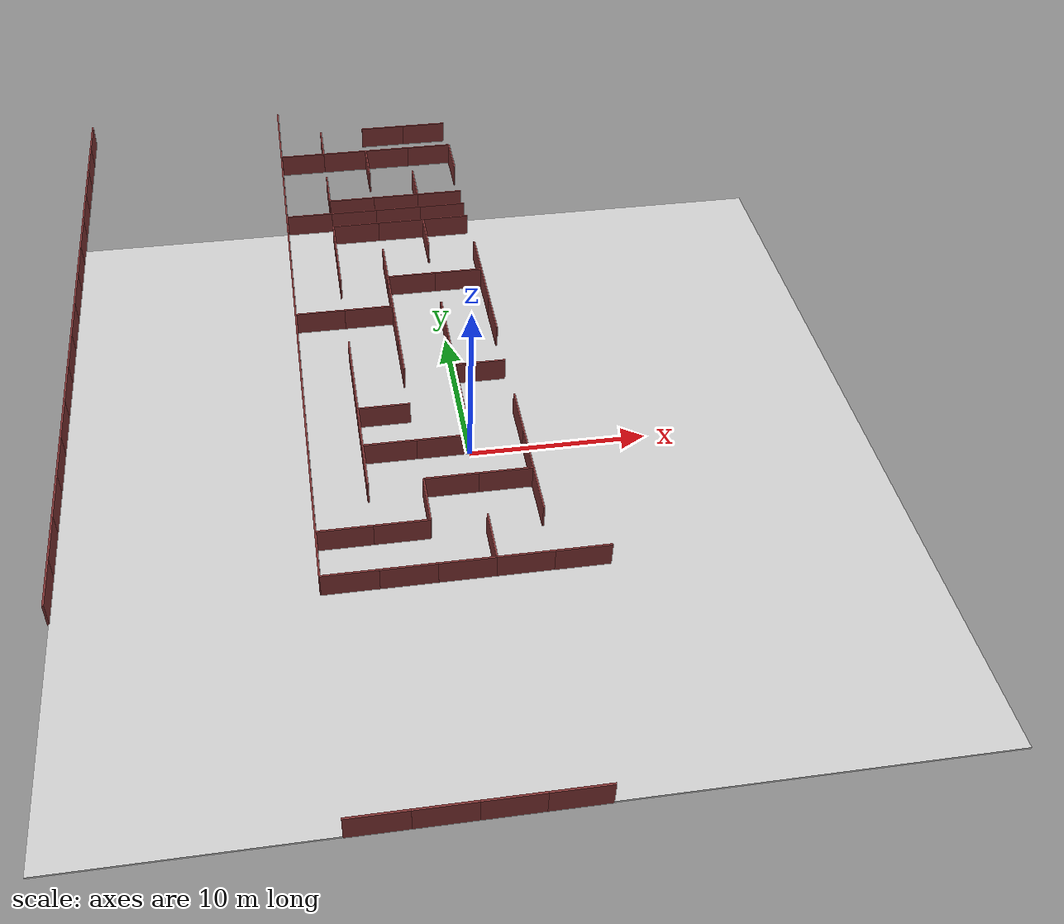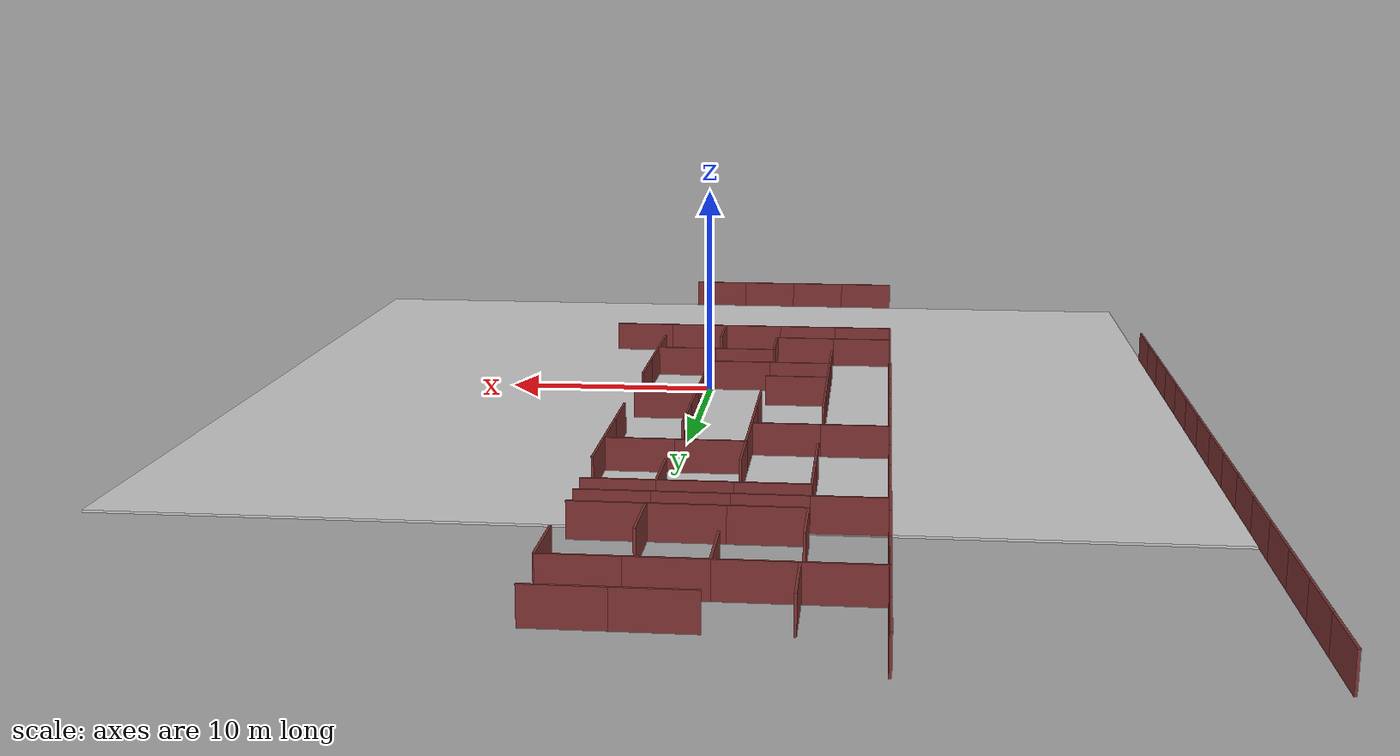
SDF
<sdf version="1.7">
 <world name="maze_world">
  <model name="ground">
   <static>true</static>
   <link name="ground_link">
    <collision name="collision"><geometry><box><size>45 45 0.1</size></box></geometry></collision>
    <visual name="visual">
     <geometry><box><size>45 45 0.1</size></box></geometry>
     <material><diffuse>0.8 0.8 0.8 1</diffuse></material>
    </visual>
   </link>
  </model>
  <model name="wall_n_1">
   <static>true</static>
   <pose>-7.5 -9.0 0.75 0 0 0</pose>
   <link name="link">
    <collision name="collision"><geometry><box><size>3 0.1 1.5</size></box></geometry></collision>
    <visual name="visual">
     <geometry><box><size>3 0.1 1.5</size></box></geometry>
     <material><diffuse>0.5 0.2 0.2 1</diffuse></material>
    </visual>
   </link>
  </model>
  <model name="wall_w_2">
   <static>true</static>
   <pose>-9.0 -7.5 0.75 0 0 1.5708</pose>
   <link name="link">
    <collision name="collision"><geometry><box><size>3 0.1 1.5</size></box></geometry></collision>
    <visual name="visual">
     <geometry><box><size>3 0.1 1.5</size></box></geometry>
     <material><diffuse>0.5 0.2 0.2 1</diffuse></material>
    </visual>
   </link>
  </model>
  <model name="wall_n_3">
   <static>true</static>
   <pose>-4.5 -9.0 0.75 0 0 0</pose>
   <link name="link">
    <collision name="collision"><geometry><box><size>3 0.1 1.5</size></box></geometry></collision>
    <visual name="visual">
     <geometry><box><size>3 0.1 1.5</size></box></geometry>
     <material><diffuse>0.5 0.2 0.2 1</diffuse></material>
    </visual>
   </link>
  </model>
  <model name="wall_n_4">
   <static>true</static>
   <pose>-1.5 -9.0 0.75 0 0 0</pose>
   <link name="link">
    <collision name="collision"><geometry><box><size>3 0.1 1.5</size></box></geometry></collision>
    <visual name="visual">
     <geometry><box><size>3 0.1 1.5</size></box></geometry>
     <material><diffuse>0.5 0.2 0.2 1</diffuse></material>
    </visual>
   </link>
  </model>
  <model name="wall_n_5">
   <static>true</static>
   <pose>1.5 -9.0 0.75 0 0 0</pose>
   <link name="link">
    <collision name="collision"><geometry><box><size>3 0.1 1.5</size></box></geometry></collision>
    <visual name="visual">
     <geometry><box><size>3 0.1 1.5</size></box></geometry>
     <material><diffuse>0.5 0.2 0.2 1</diffuse></material>
    </visual>
   </link>
  </model>
  <model name="wall_w_6">
   <static>true</static>
   <pose>0.0 -7.5 0.75 0 0 1.5708</pose>
   <link name="link">
    <collision name="collision"><geometry><box><size>3 0.1 1.5</size></box></geometry></collision>
    <visual name="visual">
     <geometry><box><size>3 0.1 1.5</size></box></geometry>
     <material><diffuse>0.5 0.2 0.2 1</diffuse></material>
    </visual>
   </link>
  </model>
  <model name="wall_n_7">
   <static>true</static>
   <pose>4.5 -9.0 0.75 0 0 0</pose>
   <link name="link">
    <collision name="collision"><geometry><box><size>3 0.1 1.5</size></box></geometry></collision>
    <visual name="visual">
     <geometry><box><size>3 0.1 1.5</size></box></geometry>
     <material><diffuse>0.5 0.2 0.2 1</diffuse></material>
    </visual>
   </link>
  </model>
  <model name="wall_n_21">
   <static>true</static>
   <pose>-7.5 -6.0 0.75 0 0 0</pose>
   <link name="link">
    <collision name="collision"><geometry><box><size>3 0.1 1.5</size></box></geometry></collision>
    <visual name="visual">
     <geometry><box><size>3 0.1 1.5</size></box></geometry>
     <material><diffuse>0.5 0.2 0.2 1</diffuse></material>
    </visual>
   </link>
  </model>
  <model name="wall_w_22">
   <static>true</static>
   <pose>-9.0 -4.5 0.75 0 0 1.5708</pose>
   <link name="link">
    <collision name="collision"><geometry><box><size>3 0.1 1.5</size></box></geometry></collision>
    <visual name="visual">
     <geometry><box><size>3 0.1 1.5</size></box></geometry>
     <material><diffuse>0.5 0.2 0.2 1</diffuse></material>
    </visual>
   </link>
  </model>
  <model name="wall_n_23">
   <static>true</static>
   <pose>-4.5 -6.0 0.75 0 0 0</pose>
   <link name="link">
    <collision name="collision"><geometry><box><size>3 0.1 1.5</size></box></geometry></collision>
    <visual name="visual">
     <geometry><box><size>3 0.1 1.5</size></box></geometry>
     <material><diffuse>0.5 0.2 0.2 1</diffuse></material>
    </visual>
   </link>
  </model>
  <model name="wall_w_24">
   <static>true</static>
   <pose>-3.0 -4.5 0.75 0 0 1.5708</pose>
   <link name="link">
    <collision name="collision"><geometry><box><size>3 0.1 1.5</size></box></geometry></collision>
    <visual name="visual">
     <geometry><box><size>3 0.1 1.5</size></box></geometry>
     <material><diffuse>0.5 0.2 0.2 1</diffuse></material>
    </visual>
   </link>
  </model>
  <model name="wall_w_26">
   <static>true</static>
   <pose>3.0 -4.5 0.75 0 0 1.5708</pose>
   <link name="link">
    <collision name="collision"><geometry><box><size>3 0.1 1.5</size></box></geometry></collision>
    <visual name="visual">
     <geometry><box><size>3 0.1 1.5</size></box></geometry>
     <material><diffuse>0.5 0.2 0.2 1</diffuse></material>
    </visual>
   </link>
  </model>
  <model name="wall_w_35">
   <static>true</static>
   <pose>-9.0 -1.5 0.75 0 0 1.5708</pose>
   <link name="link">
    <collision name="collision"><geometry><box><size>3 0.1 1.5</size></box></geometry></collision>
    <visual name="visual">
     <geometry><box><size>3 0.1 1.5</size></box></geometry>
     <material><diffuse>0.5 0.2 0.2 1</diffuse></material>
    </visual>
   </link>
  </model>
  <model name="wall_w_36">
   <static>true</static>
   <pose>-6.0 -1.5 0.75 0 0 1.5708</pose>
   <link name="link">
    <collision name="collision"><geometry><box><size>3 0.1 1.5</size></box></geometry></collision>
    <visual name="visual">
     <geometry><box><size>3 0.1 1.5</size></box></geometry>
     <material><diffuse>0.5 0.2 0.2 1</diffuse></material>
    </visual>
   </link>
  </model>
  <model name="wall_n_37">
   <static>true</static>
   <pose>-1.5 -3.0 0.75 0 0 0</pose>
   <link name="link">
    <collision name="collision"><geometry><box><size>3 0.1 1.5</size></box></geometry></collision>
    <visual name="visual">
     <geometry><box><size>3 0.1 1.5</size></box></geometry>
     <material><diffuse>0.5 0.2 0.2 1</diffuse></material>
    </visual>
   </link>
  </model>
  <model name="wall_n_38">
   <static>true</static>
   <pose>1.5 -3.0 0.75 0 0 0</pose>
   <link name="link">
    <collision name="collision"><geometry><box><size>3 0.1 1.5</size></box></geometry></collision>
    <visual name="visual">
     <geometry><box><size>3 0.1 1.5</size></box></geometry>
     <material><diffuse>0.5 0.2 0.2 1</diffuse></material>
    </visual>
   </link>
  </model>
  <model name="wall_w_39">
   <static>true</static>
   <pose>3.0 -1.5 0.75 0 0 1.5708</pose>
   <link name="link">
    <collision name="collision"><geometry><box><size>3 0.1 1.5</size></box></geometry></collision>
    <visual name="visual">
     <geometry><box><size>3 0.1 1.5</size></box></geometry>
     <material><diffuse>0.5 0.2 0.2 1</diffuse></material>
    </visual>
   </link>
  </model>
  <model name="wall_w_51">
   <static>true</static>
   <pose>-9.0 1.5 0.75 0 0 1.5708</pose>
   <link name="link">
    <collision name="collision"><geometry><box><size>3 0.1 1.5</size></box></geometry></collision>
    <visual name="visual">
     <geometry><box><size>3 0.1 1.5</size></box></geometry>
     <material><diffuse>0.5 0.2 0.2 1</diffuse></material>
    </visual>
   </link>
  </model>
  <model name="wall_n_52">
   <static>true</static>
   <pose>-4.5 0.0 0.75 0 0 0</pose>
   <link name="link">
    <collision name="collision"><geometry><box><size>3 0.1 1.5</size></box></geometry></collision>
    <visual name="visual">
     <geometry><box><size>3 0.1 1.5</size></box></geometry>
     <material><diffuse>0.5 0.2 0.2 1</diffuse></material>
    </visual>
   </link>
  </model>
  <model name="wall_w_53">
   <static>true</static>
   <pose>-6.0 1.5 0.75 0 0 1.5708</pose>
   <link name="link">
    <collision name="collision"><geometry><box><size>3 0.1 1.5</size></box></geometry></collision>
    <visual name="visual">
     <geometry><box><size>3 0.1 1.5</size></box></geometry>
     <material><diffuse>0.5 0.2 0.2 1</diffuse></material>
    </visual>
   </link>
  </model>
  <model name="wall_n_54">
   <static>true</static>
   <pose>-1.5 0.0 0.75 0 0 0</pose>
   <link name="link">
    <collision name="collision"><geometry><box><size>3 0.1 1.5</size></box></geometry></collision>
    <visual name="visual">
     <geometry><box><size>3 0.1 1.5</size></box></geometry>
     <material><diffuse>0.5 0.2 0.2 1</diffuse></material>
    </visual>
   </link>
  </model>
  <model name="wall_w_55">
   <static>true</static>
   <pose>0.0 1.5 0.75 0 0 1.5708</pose>
   <link name="link">
    <collision name="collision"><geometry><box><size>3 0.1 1.5</size></box></geometry></collision>
    <visual name="visual">
     <geometry><box><size>3 0.1 1.5</size></box></geometry>
     <material><diffuse>0.5 0.2 0.2 1</diffuse></material>
    </visual>
   </link>
  </model>
  <model name="wall_w_56">
   <static>true</static>
   <pose>3.0 1.5 0.75 0 0 1.5708</pose>
   <link name="link">
    <collision name="collision"><geometry><box><size>3 0.1 1.5</size></box></geometry></collision>
    <visual name="visual">
     <geometry><box><size>3 0.1 1.5</size></box></geometry>
     <material><diffuse>0.5 0.2 0.2 1</diffuse></material>
    </visual>
   </link>
  </model>
  <model name="wall_w_67">
   <static>true</static>
   <pose>-9.0 4.5 0.75 0 0 1.5708</pose>
   <link name="link">
    <collision name="collision"><geometry><box><size>3 0.1 1.5</size></box></geometry></collision>
    <visual name="visual">
     <geometry><box><size>3 0.1 1.5</size></box></geometry>
     <material><diffuse>0.5 0.2 0.2 1</diffuse></material>
    </visual>
   </link>
  </model>
  <model name="wall_n_68">
   <static>true</static>
   <pose>-4.5 3.0 0.75 0 0 0</pose>
   <link name="link">
    <collision name="collision"><geometry><box><size>3 0.1 1.5</size></box></geometry></collision>
    <visual name="visual">
     <geometry><box><size>3 0.1 1.5</size></box></geometry>
     <material><diffuse>0.5 0.2 0.2 1</diffuse></material>
    </visual>
   </link>
  </model>
  <model name="wall_w_69">
   <static>true</static>
   <pose>-6.0 4.5 0.75 0 0 1.5708</pose>
   <link name="link">
    <collision name="collision"><geometry><box><size>3 0.1 1.5</size></box></geometry></collision>
    <visual name="visual">
     <geometry><box><size>3 0.1 1.5</size></box></geometry>
     <material><diffuse>0.5 0.2 0.2 1</diffuse></material>
    </visual>
   </link>
  </model>
  <model name="wall_w_70">
   <static>true</static>
   <pose>0.0 4.5 0.75 0 0 1.5708</pose>
   <link name="link">
    <collision name="collision"><geometry><box><size>3 0.1 1.5</size></box></geometry></collision>
    <visual name="visual">
     <geometry><box><size>3 0.1 1.5</size></box></geometry>
     <material><diffuse>0.5 0.2 0.2 1</diffuse></material>
    </visual>
   </link>
  </model>
  <model name="wall_w_81">
   <static>true</static>
   <pose>-9.0 7.5 0.75 0 0 1.5708</pose>
   <link name="link">
    <collision name="collision"><geometry><box><size>3 0.1 1.5</size></box></geometry></collision>
    <visual name="visual">
     <geometry><box><size>3 0.1 1.5</size></box></geometry>
     <material><diffuse>0.5 0.2 0.2 1</diffuse></material>
    </visual>
   </link>
  </model>
  <model name="wall_w_82">
   <static>true</static>
   <pose>-6.0 7.5 0.75 0 0 1.5708</pose>
   <link name="link">
    <collision name="collision"><geometry><box><size>3 0.1 1.5</size></box></geometry></collision>
    <visual name="visual">
     <geometry><box><size>3 0.1 1.5</size></box></geometry>
     <material><diffuse>0.5 0.2 0.2 1</diffuse></material>
    </visual>
   </link>
  </model>
  <model name="wall_w_83">
   <static>true</static>
   <pose>-3.0 7.5 0.75 0 0 1.5708</pose>
   <link name="link">
    <collision name="collision"><geometry><box><size>3 0.1 1.5</size></box></geometry></collision>
    <visual name="visual">
     <geometry><box><size>3 0.1 1.5</size></box></geometry>
     <material><diffuse>0.5 0.2 0.2 1</diffuse></material>
    </visual>
   </link>
  </model>
  <model name="wall_n_84">
   <static>true</static>
   <pose>1.5 6.0 0.75 0 0 0</pose>
   <link name="link">
    <collision name="collision"><geometry><box><size>3 0.1 1.5</size></box></geometry></collision>
    <visual name="visual">
     <geometry><box><size>3 0.1 1.5</size></box></geometry>
     <material><diffuse>0.5 0.2 0.2 1</diffuse></material>
    </visual>
   </link>
  </model>
  <model name="wall_w_85">
   <static>true</static>
   <pose>0.0 7.5 0.75 0 0 1.5708</pose>
   <link name="link">
    <collision name="collision"><geometry><box><size>3 0.1 1.5</size></box></geometry></collision>
    <visual name="visual">
     <geometry><box><size>3 0.1 1.5</size></box></geometry>
     <material><diffuse>0.5 0.2 0.2 1</diffuse></material>
    </visual>
   </link>
  </model>
  <model name="wall_w_97">
   <static>true</static>
   <pose>-9.0 10.5 0.75 0 0 1.5708</pose>
   <link name="link">
    <collision name="collision"><geometry><box><size>3 0.1 1.5</size></box></geometry></collision>
    <visual name="visual">
     <geometry><box><size>3 0.1 1.5</size></box></geometry>
     <material><diffuse>0.5 0.2 0.2 1</diffuse></material>
    </visual>
   </link>
  </model>
  <model name="wall_w_98">
   <static>true</static>
   <pose>-3.0 10.5 0.75 0 0 1.5708</pose>
   <link name="link">
    <collision name="collision"><geometry><box><size>3 0.1 1.5</size></box></geometry></collision>
    <visual name="visual">
     <geometry><box><size>3 0.1 1.5</size></box></geometry>
     <material><diffuse>0.5 0.2 0.2 1</diffuse></material>
    </visual>
   </link>
  </model>
  <model name="wall_w_99">
   <static>true</static>
   <pose>0.0 10.5 0.75 0 0 1.5708</pose>
   <link name="link">
    <collision name="collision"><geometry><box><size>3 0.1 1.5</size></box></geometry></collision>
    <visual name="visual">
     <geometry><box><size>3 0.1 1.5</size></box></geometry>
     <material><diffuse>0.5 0.2 0.2 1</diffuse></material>
    </visual>
   </link>
  </model>
  <model name="wall_w_100">
   <static>true</static>
   <pose>3.0 10.5 0.75 0 0 1.5708</pose>
   <link name="link">
    <collision name="collision"><geometry><box><size>3 0.1 1.5</size></box></geometry></collision>
    <visual name="visual">
     <geometry><box><size>3 0.1 1.5</size></box></geometry>
     <material><diffuse>0.5 0.2 0.2 1</diffuse></material>
    </visual>
   </link>
  </model>
  <model name="wall_n_112">
   <static>true</static>
   <pose>-7.5 12.0 0.75 0 0 0</pose>
   <link name="link">
    <collision name="collision"><geometry><box><size>3 0.1 1.5</size></box></geometry></collision>
    <visual name="visual">
     <geometry><box><size>3 0.1 1.5</size></box></geometry>
     <material><diffuse>0.5 0.2 0.2 1</diffuse></material>
    </visual>
   </link>
  </model>
  <model name="wall_w_113">
   <static>true</static>
   <pose>-9.0 13.5 0.75 0 0 1.5708</pose>
   <link name="link">
    <collision name="collision"><geometry><box><size>3 0.1 1.5</size></box></geometry></collision>
    <visual name="visual">
     <geometry><box><size>3 0.1 1.5</size></box></geometry>
     <material><diffuse>0.5 0.2 0.2 1</diffuse></material>
    </visual>
   </link>
  </model>
  <model name="wall_n_114">
   <static>true</static>
   <pose>-4.5 12.0 0.75 0 0 0</pose>
   <link name="link">
    <collision name="collision"><geometry><box><size>3 0.1 1.5</size></box></geometry></collision>
    <visual name="visual">
     <geometry><box><size>3 0.1 1.5</size></box></geometry>
     <material><diffuse>0.5 0.2 0.2 1</diffuse></material>
    </visual>
   </link>
  </model>
  <model name="wall_w_115">
   <static>true</static>
   <pose>-3.0 13.5 0.75 0 0 1.5708</pose>
   <link name="link">
    <collision name="collision"><geometry><box><size>3 0.1 1.5</size></box></geometry></collision>
    <visual name="visual">
     <geometry><box><size>3 0.1 1.5</size></box></geometry>
     <material><diffuse>0.5 0.2 0.2 1</diffuse></material>
    </visual>
   </link>
  </model>
  <model name="wall_w_116">
   <static>true</static>
   <pose>3.0 13.5 0.75 0 0 1.5708</pose>
   <link name="link">
    <collision name="collision"><geometry><box><size>3 0.1 1.5</size></box></geometry></collision>
    <visual name="visual">
     <geometry><box><size>3 0.1 1.5</size></box></geometry>
     <material><diffuse>0.5 0.2 0.2 1</diffuse></material>
    </visual>
   </link>
  </model>
  <model name="wall_w_125">
   <static>true</static>
   <pose>-9.0 16.5 0.75 0 0 1.5708</pose>
   <link name="link">
    <collision name="collision"><geometry><box><size>3 0.1 1.5</size></box></geometry></collision>
    <visual name="visual">
     <geometry><box><size>3 0.1 1.5</size></box></geometry>
     <material><diffuse>0.5 0.2 0.2 1</diffuse></material>
    </visual>
   </link>
  </model>
  <model name="wall_w_126">
   <static>true</static>
   <pose>-6.0 16.5 0.75 0 0 1.5708</pose>
   <link name="link">
    <collision name="collision"><geometry><box><size>3 0.1 1.5</size></box></geometry></collision>
    <visual name="visual">
     <geometry><box><size>3 0.1 1.5</size></box></geometry>
     <material><diffuse>0.5 0.2 0.2 1</diffuse></material>
    </visual>
   </link>
  </model>
  <model name="wall_n_127">
   <static>true</static>
   <pose>-1.5 15.0 0.75 0 0 0</pose>
   <link name="link">
    <collision name="collision"><geometry><box><size>3 0.1 1.5</size></box></geometry></collision>
    <visual name="visual">
     <geometry><box><size>3 0.1 1.5</size></box></geometry>
     <material><diffuse>0.5 0.2 0.2 1</diffuse></material>
    </visual>
   </link>
  </model>
  <model name="wall_w_128">
   <static>true</static>
   <pose>-3.0 16.5 0.75 0 0 1.5708</pose>
   <link name="link">
    <collision name="collision"><geometry><box><size>3 0.1 1.5</size></box></geometry></collision>
    <visual name="visual">
     <geometry><box><size>3 0.1 1.5</size></box></geometry>
     <material><diffuse>0.5 0.2 0.2 1</diffuse></material>
    </visual>
   </link>
  </model>
  <model name="wall_n_129">
   <static>true</static>
   <pose>1.5 15.0 0.75 0 0 0</pose>
   <link name="link">
    <collision name="collision"><geometry><box><size>3 0.1 1.5</size></box></geometry></collision>
    <visual name="visual">
     <geometry><box><size>3 0.1 1.5</size></box></geometry>
     <material><diffuse>0.5 0.2 0.2 1</diffuse></material>
    </visual>
   </link>
  </model>
  <model name="wall_w_130">
   <static>true</static>
   <pose>3.0 16.5 0.75 0 0 1.5708</pose>
   <link name="link">
    <collision name="collision"><geometry><box><size>3 0.1 1.5</size></box></geometry></collision>
    <visual name="visual">
     <geometry><box><size>3 0.1 1.5</size></box></geometry>
     <material><diffuse>0.5 0.2 0.2 1</diffuse></material>
    </visual>
   </link>
  </model>
  <model name="wall_w_141">
   <static>true</static>
   <pose>-9.0 19.5 0.75 0 0 1.5708</pose>
   <link name="link">
    <collision name="collision"><geometry><box><size>3 0.1 1.5</size></box></geometry></collision>
    <visual name="visual">
     <geometry><box><size>3 0.1 1.5</size></box></geometry>
     <material><diffuse>0.5 0.2 0.2 1</diffuse></material>
    </visual>
   </link>
  </model>
  <model name="wall_w_142">
   <static>true</static>
   <pose>-6.0 19.5 0.75 0 0 1.5708</pose>
   <link name="link">
    <collision name="collision"><geometry><box><size>3 0.1 1.5</size></box></geometry></collision>
    <visual name="visual">
     <geometry><box><size>3 0.1 1.5</size></box></geometry>
     <material><diffuse>0.5 0.2 0.2 1</diffuse></material>
    </visual>
   </link>
  </model>
  <model name="wall_w_143">
   <static>true</static>
   <pose>0.0 19.5 0.75 0 0 1.5708</pose>
   <link name="link">
    <collision name="collision"><geometry><box><size>3 0.1 1.5</size></box></geometry></collision>
    <visual name="visual">
     <geometry><box><size>3 0.1 1.5</size></box></geometry>
     <material><diffuse>0.5 0.2 0.2 1</diffuse></material>
    </visual>
   </link>
  </model>
  <model name="wall_w_156">
   <static>true</static>
   <pose>-9.0 22.5 0.75 0 0 1.5708</pose>
   <link name="link">
    <collision name="collision"><geometry><box><size>3 0.1 1.5</size></box></geometry></collision>
    <visual name="visual">
     <geometry><box><size>3 0.1 1.5</size></box></geometry>
     <material><diffuse>0.5 0.2 0.2 1</diffuse></material>
    </visual>
   </link>
  </model>
  <model name="wall_n_157">
   <static>true</static>
   <pose>-4.5 21.0 0.75 0 0 0</pose>
   <link name="link">
    <collision name="collision"><geometry><box><size>3 0.1 1.5</size></box></geometry></collision>
    <visual name="visual">
     <geometry><box><size>3 0.1 1.5</size></box></geometry>
     <material><diffuse>0.5 0.2 0.2 1</diffuse></material>
    </visual>
   </link>
  </model>
  <model name="wall_n_158">
   <static>true</static>
   <pose>-1.5 21.0 0.75 0 0 0</pose>
   <link name="link">
    <collision name="collision"><geometry><box><size>3 0.1 1.5</size></box></geometry></collision>
    <visual name="visual">
     <geometry><box><size>3 0.1 1.5</size></box></geometry>
     <material><diffuse>0.5 0.2 0.2 1</diffuse></material>
    </visual>
   </link>
  </model>
  <model name="wall_n_159">
   <static>true</static>
   <pose>1.5 21.0 0.75 0 0 0</pose>
   <link name="link">
    <collision name="collision"><geometry><box><size>3 0.1 1.5</size></box></geometry></collision>
    <visual name="visual">
     <geometry><box><size>3 0.1 1.5</size></box></geometry>
     <material><diffuse>0.5 0.2 0.2 1</diffuse></material>
    </visual>
   </link>
  </model>
  <model name="wall_w_169">
   <static>true</static>
   <pose>-9.0 25.5 0.75 0 0 1.5708</pose>
   <link name="link">
    <collision name="collision"><geometry><box><size>3 0.1 1.5</size></box></geometry></collision>
    <visual name="visual">
     <geometry><box><size>3 0.1 1.5</size></box></geometry>
     <material><diffuse>0.5 0.2 0.2 1</diffuse></material>
    </visual>
   </link>
  </model>
  <model name="wall_n_170">
   <static>true</static>
   <pose>-4.5 24.0 0.75 0 0 0</pose>
   <link name="link">
    <collision name="collision"><geometry><box><size>3 0.1 1.5</size></box></geometry></collision>
    <visual name="visual">
     <geometry><box><size>3 0.1 1.5</size></box></geometry>
     <material><diffuse>0.5 0.2 0.2 1</diffuse></material>
    </visual>
   </link>
  </model>
  <model name="wall_w_171">
   <static>true</static>
   <pose>-6.0 25.5 0.75 0 0 1.5708</pose>
   <link name="link">
    <collision name="collision"><geometry><box><size>3 0.1 1.5</size></box></geometry></collision>
    <visual name="visual">
     <geometry><box><size>3 0.1 1.5</size></box></geometry>
     <material><diffuse>0.5 0.2 0.2 1</diffuse></material>
    </visual>
   </link>
  </model>
  <model name="wall_n_172">
   <static>true</static>
   <pose>-1.5 24.0 0.75 0 0 0</pose>
   <link name="link">
    <collision name="collision"><geometry><box><size>3 0.1 1.5</size></box></geometry></collision>
    <visual name="visual">
     <geometry><box><size>3 0.1 1.5</size></box></geometry>
     <material><diffuse>0.5 0.2 0.2 1</diffuse></material>
    </visual>
   </link>
  </model>
  <model name="wall_n_173">
   <static>true</static>
   <pose>1.5 24.0 0.75 0 0 0</pose>
   <link name="link">
    <collision name="collision"><geometry><box><size>3 0.1 1.5</size></box></geometry></collision>
    <visual name="visual">
     <geometry><box><size>3 0.1 1.5</size></box></geometry>
     <material><diffuse>0.5 0.2 0.2 1</diffuse></material>
    </visual>
   </link>
  </model>
  <model name="wall_w_174">
   <static>true</static>
   <pose>0.0 25.5 0.75 0 0 1.5708</pose>
   <link name="link">
    <collision name="collision"><geometry><box><size>3 0.1 1.5</size></box></geometry></collision>
    <visual name="visual">
     <geometry><box><size>3 0.1 1.5</size></box></geometry>
     <material><diffuse>0.5 0.2 0.2 1</diffuse></material>
    </visual>
   </link>
  </model>
  <model name="wall_w_187">
   <static>true</static>
   <pose>-9.0 28.5 0.75 0 0 1.5708</pose>
   <link name="link">
    <collision name="collision"><geometry><box><size>3 0.1 1.5</size></box></geometry></collision>
    <visual name="visual">
     <geometry><box><size>3 0.1 1.5</size></box></geometry>
     <material><diffuse>0.5 0.2 0.2 1</diffuse></material>
    </visual>
   </link>
  </model>
  <model name="wall_w_188">
   <static>true</static>
   <pose>-3.0 28.5 0.75 0 0 1.5708</pose>
   <link name="link">
    <collision name="collision"><geometry><box><size>3 0.1 1.5</size></box></geometry></collision>
    <visual name="visual">
     <geometry><box><size>3 0.1 1.5</size></box></geometry>
     <material><diffuse>0.5 0.2 0.2 1</diffuse></material>
    </visual>
   </link>
  </model>
  <model name="wall_w_189">
   <static>true</static>
   <pose>3.0 28.5 0.75 0 0 1.5708</pose>
   <link name="link">
    <collision name="collision"><geometry><box><size>3 0.1 1.5</size></box></geometry></collision>
    <visual name="visual">
     <geometry><box><size>3 0.1 1.5</size></box></geometry>
     <material><diffuse>0.5 0.2 0.2 1</diffuse></material>
    </visual>
   </link>
  </model>
  <model name="wall_n_199">
   <static>true</static>
   <pose>-7.5 30.0 0.75 0 0 0</pose>
   <link name="link">
    <collision name="collision"><geometry><box><size>3 0.1 1.5</size></box></geometry></collision>
    <visual name="visual">
     <geometry><box><size>3 0.1 1.5</size></box></geometry>
     <material><diffuse>0.5 0.2 0.2 1</diffuse></material>
    </visual>
   </link>
  </model>
  <model name="wall_w_200">
   <static>true</static>
   <pose>-9.0 31.5 0.75 0 0 1.5708</pose>
   <link name="link">
    <collision name="collision"><geometry><box><size>3 0.1 1.5</size></box></geometry></collision>
    <visual name="visual">
     <geometry><box><size>3 0.1 1.5</size></box></geometry>
     <material><diffuse>0.5 0.2 0.2 1</diffuse></material>
    </visual>
   </link>
  </model>
  <model name="wall_n_201">
   <static>true</static>
   <pose>-4.5 30.0 0.75 0 0 0</pose>
   <link name="link">
    <collision name="collision"><geometry><box><size>3 0.1 1.5</size></box></geometry></collision>
    <visual name="visual">
     <geometry><box><size>3 0.1 1.5</size></box></geometry>
     <material><diffuse>0.5 0.2 0.2 1</diffuse></material>
    </visual>
   </link>
  </model>
  <model name="wall_w_202">
   <static>true</static>
   <pose>-6.0 31.5 0.75 0 0 1.5708</pose>
   <link name="link">
    <collision name="collision"><geometry><box><size>3 0.1 1.5</size></box></geometry></collision>
    <visual name="visual">
     <geometry><box><size>3 0.1 1.5</size></box></geometry>
     <material><diffuse>0.5 0.2 0.2 1</diffuse></material>
    </visual>
   </link>
  </model>
  <model name="wall_n_203">
   <static>true</static>
   <pose>-1.5 30.0 0.75 0 0 0</pose>
   <link name="link">
    <collision name="collision"><geometry><box><size>3 0.1 1.5</size></box></geometry></collision>
    <visual name="visual">
     <geometry><box><size>3 0.1 1.5</size></box></geometry>
     <material><diffuse>0.5 0.2 0.2 1</diffuse></material>
    </visual>
   </link>
  </model>
  <model name="wall_n_204">
   <static>true</static>
   <pose>1.5 30.0 0.75 0 0 0</pose>
   <link name="link">
    <collision name="collision"><geometry><box><size>3 0.1 1.5</size></box></geometry></collision>
    <visual name="visual">
     <geometry><box><size>3 0.1 1.5</size></box></geometry>
     <material><diffuse>0.5 0.2 0.2 1</diffuse></material>
    </visual>
   </link>
  </model>
  <model name="wall_w_215">
   <static>true</static>
   <pose>-9.0 34.5 0.75 0 0 1.5708</pose>
   <link name="link">
    <collision name="collision"><geometry><box><size>3 0.1 1.5</size></box></geometry></collision>
    <visual name="visual">
     <geometry><box><size>3 0.1 1.5</size></box></geometry>
     <material><diffuse>0.5 0.2 0.2 1</diffuse></material>
    </visual>
   </link>
  </model>
  <model name="wall_n_216">
   <static>true</static>
   <pose>-1.5 33.0 0.75 0 0 0</pose>
   <link name="link">
    <collision name="collision"><geometry><box><size>3 0.1 1.5</size></box></geometry></collision>
    <visual name="visual">
     <geometry><box><size>3 0.1 1.5</size></box></geometry>
     <material><diffuse>0.5 0.2 0.2 1</diffuse></material>
    </visual>
   </link>
  </model>
  <model name="wall_n_217">
   <static>true</static>
   <pose>1.5 33.0 0.75 0 0 0</pose>
   <link name="link">
    <collision name="collision"><geometry><box><size>3 0.1 1.5</size></box></geometry></collision>
    <visual name="visual">
     <geometry><box><size>3 0.1 1.5</size></box></geometry>
     <material><diffuse>0.5 0.2 0.2 1</diffuse></material>
    </visual>
   </link>
  </model>
  <model name="wall_top_0">
   <static>true</static>
   <pose>-7.5 22.5 0.75 0 0 0</pose>
   <link name="link">
    <collision name="collision"><geometry><box><size>3 0.1 1.5</size></box></geometry></collision>
    <visual name="visual">
     <geometry><box><size>3 0.1 1.5</size></box></geometry>
     <material><diffuse>0.5 0.2 0.2 1</diffuse></material>
    </visual>
   </link>
  </model>
  <model name="wall_bottom_0">
   <static>true</static>
   <pose>-7.5 -22.5 0.75 0 0 0</pose>
   <link name="link">
    <collision name="collision"><geometry><box><size>3 0.1 1.5</size></box></geometry></collision>
    <visual name="visual">
     <geometry><box><size>3 0.1 1.5</size></box></geometry>
     <material><diffuse>0.5 0.2 0.2 1</diffuse></material>
    </visual>
   </link>
  </model>
  <model name="wall_top_1">
   <static>true</static>
   <pose>-4.5 22.5 0.75 0 0 0</pose>
   <link name="link">
    <collision name="collision"><geometry><box><size>3 0.1 1.5</size></box></geometry></collision>
    <visual name="visual">
     <geometry><box><size>3 0.1 1.5</size></box></geometry>
     <material><diffuse>0.5 0.2 0.2 1</diffuse></material>
    </visual>
   </link>
  </model>
  <model name="wall_bottom_1">
   <static>true</static>
   <pose>-4.5 -22.5 0.75 0 0 0</pose>
   <link name="link">
    <collision name="collision"><geometry><box><size>3 0.1 1.5</size></box></geometry></collision>
    <visual name="visual">
     <geometry><box><size>3 0.1 1.5</size></box></geometry>
     <material><diffuse>0.5 0.2 0.2 1</diffuse></material>
    </visual>
   </link>
  </model>
  <model name="wall_top_2">
   <static>true</static>
   <pose>-1.5 22.5 0.75 0 0 0</pose>
   <link name="link">
    <collision name="collision"><geometry><box><size>3 0.1 1.5</size></box></geometry></collision>
    <visual name="visual">
     <geometry><box><size>3 0.1 1.5</size></box></geometry>
     <material><diffuse>0.5 0.2 0.2 1</diffuse></material>
    </visual>
   </link>
  </model>
  <model name="wall_bottom_2">
   <static>true</static>
   <pose>-1.5 -22.5 0.75 0 0 0</pose>
   <link name="link">
    <collision name="collision"><geometry><box><size>3 0.1 1.5</size></box></geometry></collision>
    <visual name="visual">
     <geometry><box><size>3 0.1 1.5</size></box></geometry>
     <material><diffuse>0.5 0.2 0.2 1</diffuse></material>
    </visual>
   </link>
  </model>
  <model name="wall_top_3">
   <static>true</static>
   <pose>1.5 22.5 0.75 0 0 0</pose>
   <link name="link">
    <collision name="collision"><geometry><box><size>3 0.1 1.5</size></box></geometry></collision>
    <visual name="visual">
     <geometry><box><size>3 0.1 1.5</size></box></geometry>
     <material><diffuse>0.5 0.2 0.2 1</diffuse></material>
    </visual>
   </link>
  </model>
  <model name="wall_bottom_3">
   <static>true</static>
   <pose>1.5 -22.5 0.75 0 0 0</pose>
   <link name="link">
    <collision name="collision"><geometry><box><size>3 0.1 1.5</size></box></geometry></collision>
    <visual name="visual">
     <geometry><box><size>3 0.1 1.5</size></box></geometry>
     <material><diffuse>0.5 0.2 0.2 1</diffuse></material>
    </visual>
   </link>
  </model>
  <model name="wall_left_0">
   <static>true</static>
   <pose>-22.5 -7.5 0.75 0 0 1.5708</pose>
   <link name="link">
    <collision name="collision"><geometry><box><size>3 0.1 1.5</size></box></geometry></collision>
    <visual name="visual">
     <geometry><box><size>3 0.1 1.5</size></box></geometry>
     <material><diffuse>0.5 0.2 0.2 1</diffuse></material>
    </visual>
   </link>
  </model>
  <model name="wall_left_1">
   <static>true</static>
   <pose>-22.5 -4.5 0.75 0 0 1.5708</pose>
   <link name="link">
    <collision name="collision"><geometry><box><size>3 0.1 1.5</size></box></geometry></collision>
    <visual name="visual">
     <geometry><box><size>3 0.1 1.5</size></box></geometry>
     <material><diffuse>0.5 0.2 0.2 1</diffuse></material>
    </visual>
   </link>
  </model>
  <model name="wall_left_2">
   <static>true</static>
   <pose>-22.5 -1.5 0.75 0 0 1.5708</pose>
   <link name="link">
    <collision name="collision"><geometry><box><size>3 0.1 1.5</size></box></geometry></collision>
    <visual name="visual">
     <geometry><box><size>3 0.1 1.5</size></box></geometry>
     <material><diffuse>0.5 0.2 0.2 1</diffuse></material>
    </visual>
   </link>
  </model>
  <model name="wall_left_3">
   <static>true</static>
   <pose>-22.5 1.5 0.75 0 0 1.5708</pose>
   <link name="link">
    <collision name="collision"><geometry><box><size>3 0.1 1.5</size></box></geometry></collision>
    <visual name="visual">
     <geometry><box><size>3 0.1 1.5</size></box></geometry>
     <material><diffuse>0.5 0.2 0.2 1</diffuse></material>
    </visual>
   </link>
  </model>
  <model name="wall_left_4">
   <static>true</static>
   <pose>-22.5 4.5 0.75 0 0 1.5708</pose>
   <link name="link">
    <collision name="collision"><geometry><box><size>3 0.1 1.5</size></box></geometry></collision>
    <visual name="visual">
     <geometry><box><size>3 0.1 1.5</size></box></geometry>
     <material><diffuse>0.5 0.2 0.2 1</diffuse></material>
    </visual>
   </link>
  </model>
  <model name="wall_left_5">
   <static>true</static>
   <pose>-22.5 7.5 0.75 0 0 1.5708</pose>
   <link name="link">
    <collision name="collision"><geometry><box><size>3 0.1 1.5</size></box></geometry></collision>
    <visual name="visual">
     <geometry><box><size>3 0.1 1.5</size></box></geometry>
     <material><diffuse>0.5 0.2 0.2 1</diffuse></material>
    </visual>
   </link>
  </model>
  <model name="wall_left_6">
   <static>true</static>
   <pose>-22.5 10.5 0.75 0 0 1.5708</pose>
   <link name="link">
    <collision name="collision"><geometry><box><size>3 0.1 1.5</size></box></geometry></collision>
    <visual name="visual">
     <geometry><box><size>3 0.1 1.5</size></box></geometry>
     <material><diffuse>0.5 0.2 0.2 1</diffuse></material>
    </visual>
   </link>
  </model>
  <model name="wall_left_7">
   <static>true</static>
   <pose>-22.5 13.5 0.75 0 0 1.5708</pose>
   <link name="link">
    <collision name="collision"><geometry><box><size>3 0.1 1.5</size></box></geometry></collision>
    <visual name="visual">
     <geometry><box><size>3 0.1 1.5</size></box></geometry>
     <material><diffuse>0.5 0.2 0.2 1</diffuse></material>
    </visual>
   </link>
  </model>
  <model name="wall_left_8">
   <static>true</static>
   <pose>-22.5 16.5 0.75 0 0 1.5708</pose>
   <link name="link">
    <collision name="collision"><geometry><box><size>3 0.1 1.5</size></box></geometry></collision>
    <visual name="visual">
     <geometry><box><size>3 0.1 1.5</size></box></geometry>
     <material><diffuse>0.5 0.2 0.2 1</diffuse></material>
    </visual>
   </link>
  </model>
  <model name="wall_left_9">
   <static>true</static>
   <pose>-22.5 19.5 0.75 0 0 1.5708</pose>
   <link name="link">
    <collision name="collision"><geometry><box><size>3 0.1 1.5</size></box></geometry></collision>
    <visual name="visual">
     <geometry><box><size>3 0.1 1.5</size></box></geometry>
     <material><diffuse>0.5 0.2 0.2 1</diffuse></material>
    </visual>
   </link>
  </model>
  <model name="wall_left_10">
   <static>true</static>
   <pose>-22.5 22.5 0.75 0 0 1.5708</pose>
   <link name="link">
    <collision name="collision"><geometry><box><size>3 0.1 1.5</size></box></geometry></collision>
    <visual name="visual">
     <geometry><box><size>3 0.1 1.5</size></box></geometry>
     <material><diffuse>0.5 0.2 0.2 1</diffuse></material>
    </visual>
   </link>
  </model>
  <model name="wall_left_11">
   <static>true</static>
   <pose>-22.5 25.5 0.75 0 0 1.5708</pose>
   <link name="link">
    <collision name="collision"><geometry><box><size>3 0.1 1.5</size></box></geometry></collision>
    <visual name="visual">
     <geometry><box><size>3 0.1 1.5</size></box></geometry>
     <material><diffuse>0.5 0.2 0.2 1</diffuse></material>
    </visual>
   </link>
  </model>
  <model name="wall_left_12">
   <static>true</static>
   <pose>-22.5 28.5 0.75 0 0 1.5708</pose>
   <link name="link">
    <collision name="collision"><geometry><box><size>3 0.1 1.5</size></box></geometry></collision>
    <visual name="visual">
     <geometry><box><size>3 0.1 1.5</size></box></geometry>
     <material><diffuse>0.5 0.2 0.2 1</diffuse></material>
    </visual>
   </link>
  </model>
  <model name="wall_left_13">
   <static>true</static>
   <pose>-22.5 31.5 0.75 0 0 1.5708</pose>
   <link name="link">
    <collision name="collision"><geometry><box><size>3 0.1 1.5</size></box></geometry></collision>
    <visual name="visual">
     <geometry><box><size>3 0.1 1.5</size></box></geometry>
     <material><diffuse>0.5 0.2 0.2 1</diffuse></material>
    </visual>
   </link>
  </model>
  <model name="wall_left_14">
   <static>true</static>
   <pose>-22.5 34.5 0.75 0 0 1.5708</pose>
   <link name="link">
    <collision name="collision"><geometry><box><size>3 0.1 1.5</size></box></geometry></collision>
    <visual name="visual">
     <geometry><box><size>3 0.1 1.5</size></box></geometry>
     <material><diffuse>0.5 0.2 0.2 1</diffuse></material>
    </visual>
   </link>
  </model>
 </world>
</sdf>
